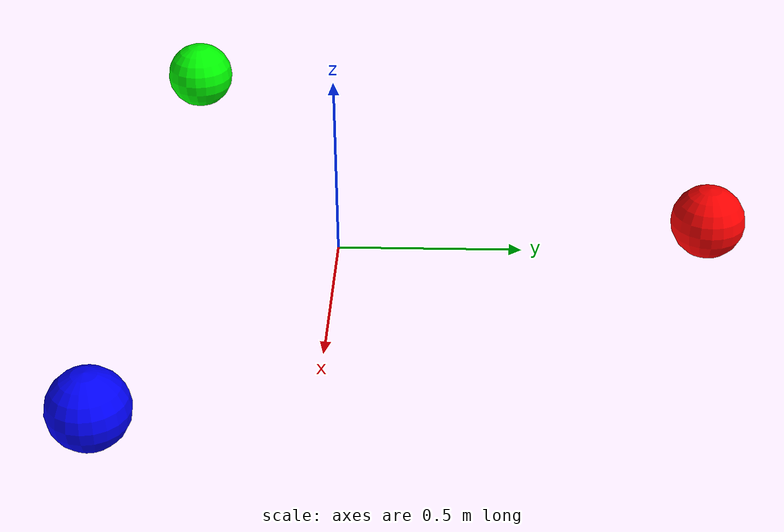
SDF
<?xml version="1.0"?>
<sdf version="1.6">
  <model name="Pizza Saver">
    <link name="body">
      <inertial>
        <pose>0 0 0.0 0 0 0</pose>
        <mass>1</mass>
        <inertia>
          <ixx>1.0</ixx>
          <iyy>1.0</iyy>
          <izz>1.0</izz>
          <ixy>0</ixy>
          <ixz>0</ixz>
          <iyz>0</iyz>
        </inertia>
      </inertial>

      <visual name="top_leg_visual">
        <pose>0.0 1.0 0.1 0 0 0</pose>
        <geometry>
          <sphere>
            <radius>0.1</radius>
          </sphere>
        </geometry>
        <material>
          <diffuse>1 0 0 1</diffuse>
        </material>
      </visual>
      <collision name="top_leg_collision">
        <pose>0.0 1.0 0.1 0 0 0</pose>
        <geometry>
          <sphere>
            <radius>0.1</radius>
          </sphere>
        </geometry>
        <drake:proximity_properties>
          <drake:point_contact_stiffness>
          3.333333333333e6</drake:point_contact_stiffness>
          <drake:hunt_crossley_dissipation>2108.18510677892
          </drake:hunt_crossley_dissipation>
          <drake:mu_dynamic>1.0</drake:mu_dynamic>
          <drake:mu_static>1.0</drake:mu_static>
        </drake:proximity_properties>
      </collision>

      <visual name="bottom_left_leg_visual">
        <!-- yaw = -120 degrees. -->
        <pose>-0.866025403784439 -0.5 0.1 0 0 0</pose>
        <geometry>
          <sphere>
            <radius>0.1</radius>
          </sphere>
        </geometry>
        <material>
          <diffuse>0 1 0 1</diffuse>
        </material>
      </visual>
      <collision name="bottom_left_leg_collision">
        <pose>-0.866025403784439 -0.5 0.1 0 0 0</pose>
        <geometry>
          <sphere>
            <radius>0.1</radius>
          </sphere>
        </geometry>
        <drake:proximity_properties>
          <drake:point_contact_stiffness>
          3.333333333333e6</drake:point_contact_stiffness>
          <drake:hunt_crossley_dissipation>2108.18510677892
          </drake:hunt_crossley_dissipation>
          <drake:mu_dynamic>1.0</drake:mu_dynamic>
          <drake:mu_static>1.0</drake:mu_static>
        </drake:proximity_properties>
      </collision>

      <visual name="bottom_right_leg_visual">
        <!-- yaw = +120 degrees. -->
        <pose>0.866025403784439 -0.5 0.1 0 0 0</pose>
        <geometry>
          <sphere>
            <radius>0.1</radius>
          </sphere>
        </geometry>
        <material>
          <diffuse>0 0 1 1</diffuse>
        </material>
      </visual>
      <collision name="bottom_right_leg_collision">
        <pose>0.866025403784439 -0.5 0.1 0 0 0</pose>
        <geometry>
          <sphere>
            <radius>0.1</radius>
          </sphere>
        </geometry>
        <drake:proximity_properties>
          <drake:point_contact_stiffness>
          3.333333333333e6</drake:point_contact_stiffness>
          <drake:hunt_crossley_dissipation>2108.18510677892
          </drake:hunt_crossley_dissipation>
          <drake:mu_dynamic>1.0</drake:mu_dynamic>
          <drake:mu_static>1.0</drake:mu_static>
        </drake:proximity_properties>
      </collision>

    </link>
  </model>
</sdf>
